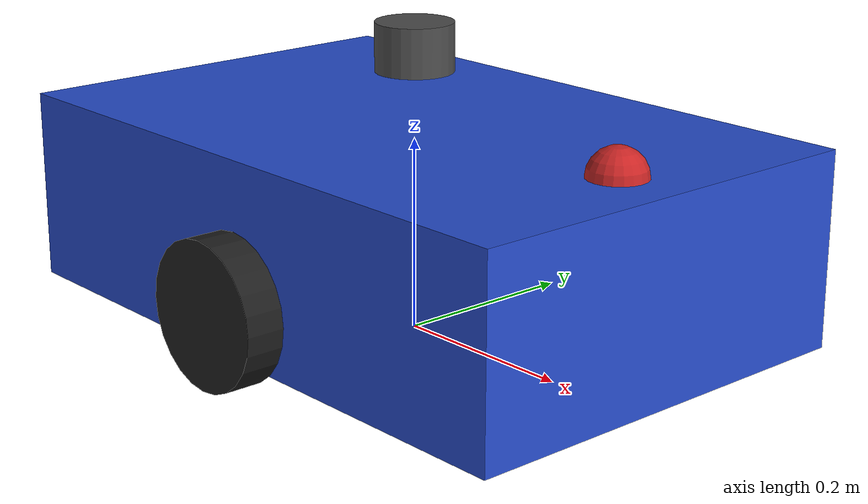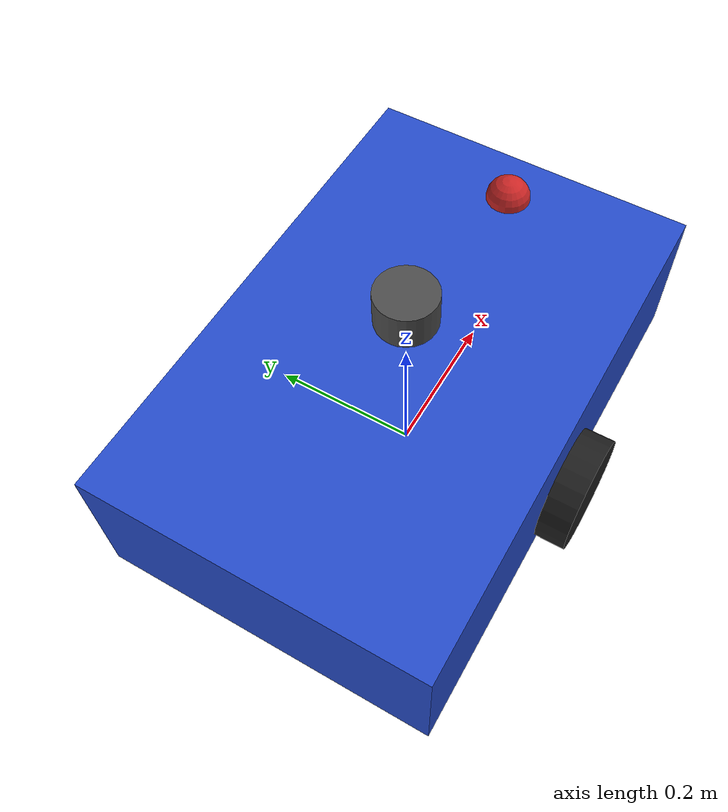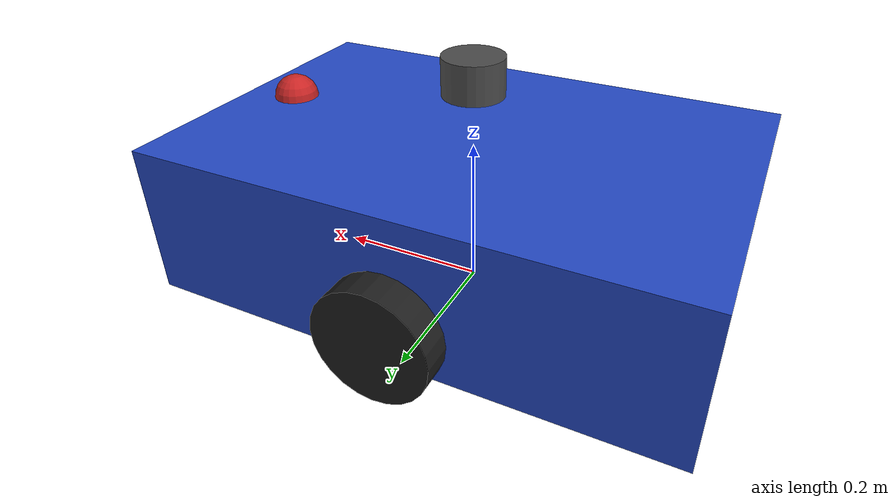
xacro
<?xml version="1.0"?>
<robot xmlns:xacro="http://www.ros.org/wiki/xacro">

  <!-- Dimensions -->
  <xacro:property name="base_length" value="0.69"/>
  <xacro:property name="base_width"  value="0.45"/>
  <xacro:property name="base_height" value="0.20"/>
  <xacro:property name="base_mass"   value="8.0"/>

  <xacro:property name="wheel_radius" value="0.075"/>
  <xacro:property name="wheel_width"  value="0.04"/>
  <xacro:property name="wheel_mass"   value="0.5"/>

  <xacro:property name="base_clearance"    value="0.02"/>
  <xacro:property name="support_radius"    value="0.025"/>
  <xacro:property name="support_mass"      value="0.08"/>
  <xacro:property name="support_x_offset"  value="0.18"/>
  <xacro:property name="support_hover"     value="0.002"/>

  <xacro:property name="lidar_radius"         value="0.04"/>
  <xacro:property name="lidar_height"         value="0.05"/>
  <xacro:property name="lidar_mass"           value="0.3"/>
  <xacro:property name="front_marker_radius"  value="0.03"/>
  <xacro:property name="front_marker_x"       value="${base_length / 2.0 - 0.07}"/>

  <!-- Derived values -->
  <xacro:property name="base_z"          value="${base_clearance + base_height / 2.0}"/>
  <xacro:property name="wheel_joint_z"   value="${wheel_radius - base_z}"/>
  <xacro:property name="support_joint_z" value="${support_radius + support_hover - base_z}"/>

  <!-- Inertia macros -->
  <xacro:macro name="box_inertia" params="m x y z">
    <inertial>
      <mass value="${m}"/>
      <origin xyz="0 0 0" rpy="0 0 0"/>
      <inertia
        ixx="${(1.0/12.0)*m*(y*y+z*z)}" ixy="0" ixz="0"
        iyy="${(1.0/12.0)*m*(x*x+z*z)}" iyz="0"
        izz="${(1.0/12.0)*m*(x*x+y*y)}"/>
    </inertial>
  </xacro:macro>

  <xacro:macro name="cylinder_inertia" params="m r l">
    <inertial>
      <mass value="${m}"/>
      <origin xyz="0 0 0" rpy="0 0 0"/>
      <inertia
        ixx="${(1.0/12.0)*m*(3*r*r+l*l)}" ixy="0" ixz="0"
        iyy="${(1.0/12.0)*m*(3*r*r+l*l)}" iyz="0"
        izz="${0.5*m*r*r}"/>
    </inertial>
  </xacro:macro>

  <xacro:macro name="sphere_inertia" params="m r">
    <inertial>
      <mass value="${m}"/>
      <origin xyz="0 0 0" rpy="0 0 0"/>
      <inertia
        ixx="${(2.0/5.0)*m*r*r}" ixy="0" ixz="0"
        iyy="${(2.0/5.0)*m*r*r}" iyz="0"
        izz="${(2.0/5.0)*m*r*r}"/>
    </inertial>
  </xacro:macro>

  <!-- Base footprint -->
  <link name="base_footprint"/>

  <!-- Base link -->
  <link name="base_link">
    <visual>
      <origin xyz="0 0 0" rpy="0 0 0"/>
      <geometry>
        <box size="${base_length} ${base_width} ${base_height}"/>
      </geometry>
      <material name="blue"/>
    </visual>
    <visual>
      <origin xyz="${front_marker_x} 0 ${base_height/2.0}" rpy="0 0 0"/>
      <geometry>
        <sphere radius="${front_marker_radius}"/>
      </geometry>
      <material name="red"/>
    </visual>
    <collision>
      <origin xyz="0 0 0" rpy="0 0 0"/>
      <geometry>
        <box size="${base_length} ${base_width} ${base_height}"/>
      </geometry>
    </collision>
    <xacro:box_inertia m="${base_mass}" x="${base_length}" y="${base_width}" z="${base_height}"/>
  </link>

  <joint name="base_footprint_joint" type="fixed">
    <parent link="base_footprint"/>
    <child link="base_link"/>
    <origin xyz="0 0 ${base_z}" rpy="0 0 0"/>
  </joint>

  <!-- Left wheel -->
  <link name="left_wheel_link">
    <visual>
      <origin xyz="0 0 0" rpy="1.57079632679 0 0"/>
      <geometry>
        <cylinder radius="${wheel_radius}" length="${wheel_width}"/>
      </geometry>
      <material name="black"/>
    </visual>
    <collision>
      <origin xyz="0 0 0" rpy="1.57079632679 0 0"/>
      <geometry>
        <cylinder radius="${wheel_radius}" length="${wheel_width}"/>
      </geometry>
    </collision>
    <xacro:cylinder_inertia m="${wheel_mass}" r="${wheel_radius}" l="${wheel_width}"/>
  </link>

  <joint name="base_left_wheel_joint" type="continuous">
    <parent link="base_link"/>
    <child link="left_wheel_link"/>
    <origin xyz="0 ${base_width/2.0 + wheel_width/2.0} ${wheel_joint_z}" rpy="0 0 0"/>
    <axis xyz="0 1 0"/>
  </joint>

  <!-- Right wheel -->
  <link name="right_wheel_link">
    <visual>
      <origin xyz="0 0 0" rpy="1.57079632679 0 0"/>
      <geometry>
        <cylinder radius="${wheel_radius}" length="${wheel_width}"/>
      </geometry>
      <material name="black"/>
    </visual>
    <collision>
      <origin xyz="0 0 0" rpy="1.57079632679 0 0"/>
      <geometry>
        <cylinder radius="${wheel_radius}" length="${wheel_width}"/>
      </geometry>
    </collision>
    <xacro:cylinder_inertia m="${wheel_mass}" r="${wheel_radius}" l="${wheel_width}"/>
  </link>

  <joint name="base_right_wheel_joint" type="continuous">
    <parent link="base_link"/>
    <child link="right_wheel_link"/>
    <origin xyz="0 ${-(base_width/2.0 + wheel_width/2.0)} ${wheel_joint_z}" rpy="0 0 0"/>
    <axis xyz="0 1 0"/>
  </joint>

  <!-- Front passive support -->
  <link name="front_support_link">
    <visual>
      <origin xyz="0 0 0" rpy="0 0 0"/>
      <geometry><sphere radius="${support_radius}"/></geometry>
      <material name="dark_grey"/>
    </visual>
    <collision>
      <origin xyz="0 0 0" rpy="0 0 0"/>
      <geometry><sphere radius="${support_radius}"/></geometry>
    </collision>
    <xacro:sphere_inertia m="${support_mass}" r="${support_radius}"/>
  </link>

  <joint name="front_support_joint" type="fixed">
    <parent link="base_link"/>
    <child link="front_support_link"/>
    <origin xyz="${support_x_offset} 0 ${support_joint_z}" rpy="0 0 0"/>
  </joint>

  <!-- Rear passive support -->
  <link name="rear_support_link">
    <visual>
      <origin xyz="0 0 0" rpy="0 0 0"/>
      <geometry><sphere radius="${support_radius}"/></geometry>
      <material name="dark_grey"/>
    </visual>
    <collision>
      <origin xyz="0 0 0" rpy="0 0 0"/>
      <geometry><sphere radius="${support_radius}"/></geometry>
    </collision>
    <xacro:sphere_inertia m="${support_mass}" r="${support_radius}"/>
  </link>

  <joint name="rear_support_joint" type="fixed">
    <parent link="base_link"/>
    <child link="rear_support_link"/>
    <origin xyz="${-support_x_offset} 0 ${support_joint_z}" rpy="0 0 0"/>
  </joint>

  <!-- LiDAR -->
  <link name="laser">
    <visual>
      <origin xyz="0 0 0" rpy="0 0 0"/>
      <geometry>
        <cylinder radius="${lidar_radius}" length="${lidar_height}"/>
      </geometry>
      <material name="dark_grey"/>
    </visual>
    <collision>
      <origin xyz="0 0 0" rpy="0 0 0"/>
      <geometry>
        <cylinder radius="${lidar_radius}" length="${lidar_height}"/>
      </geometry>
    </collision>
    <xacro:cylinder_inertia m="${lidar_mass}" r="${lidar_radius}" l="${lidar_height}"/>
  </link>

  <joint name="laser_joint" type="fixed">
    <parent link="base_link"/>
    <child link="laser"/>
    <origin xyz="0 0 ${base_height/2.0 + lidar_height/2.0 + 0.05}" rpy="0 0 0"/>
  </joint>

</robot>
